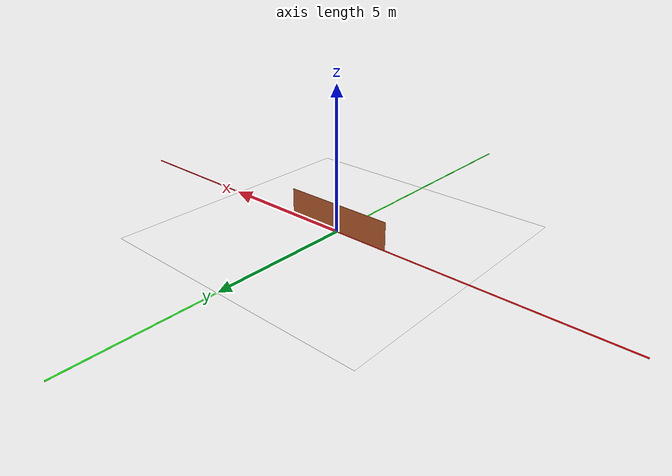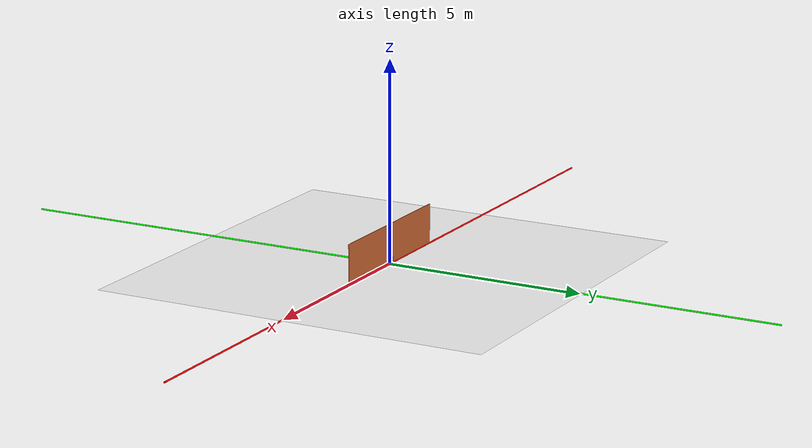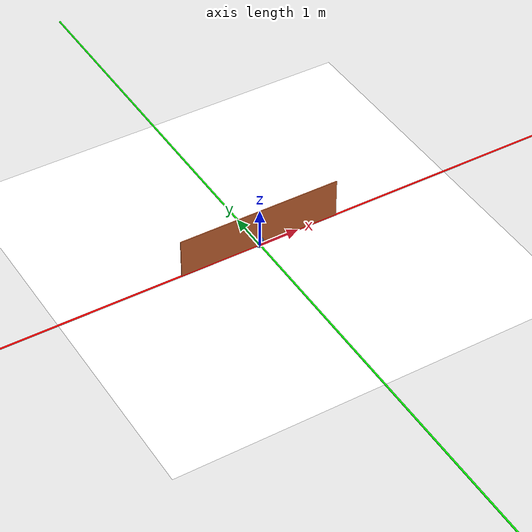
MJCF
<mujoco model="leg_in_stick_world">
  <compiler angle="radian" coordinate="local" inertiafromgeom="true"/>

  <!-- Use stick's physics settings -->
  <option timestep="0.002" integrator="RK4" gravity="0 0 -9.81"/>

  <!-- Use stick's contact settings -->
  <default>
    <geom contype="1" conaffinity="1" friction="3 3 3"
          solimp="0.995 0.995 0.001" solref="0.005 0.3"/>
    <!-- Keep leg joint defaults -->
    <joint type="hinge" pos="0 0 0" axis="0 1 0" limited="true" damping="1.0"/>
    <position ctrlrange="-3.14 3.14" kp="100"/>
  </default>

  <worldbody>
    <!-- STICK'S WORLD - copy exactly -->
    <geom name="ground" type="plane" size="5 5 0.1"
          rgba="1 1 1 1" material="checkerboard"/>

    <geom name="wall" type="box" size="2 0.01 0.5" pos="0 0 0.5" rgba="0.8 0.4 0.2 1"/>

    <geom name="x_axis" type="cylinder" size="0.02 10"
          pos="0 0 0.01" rgba="1 0 0 1" euler="0 1.5708 0"
          contype="0" conaffinity="0"/>

    <geom name="y_axis" type="cylinder" size="0.02 10"
          pos="0 0 0.01" rgba="0 1 0 1" euler="1.5708 0 0"
          contype="0" conaffinity="0"/>

    <!-- REPLACE STICK WITH LEG - but use freejoint like stick -->
    <body name="leg_body" pos="0 0 0" euler="0 0 0">  <!-- We'll set this rotation in Python -->
        <freejoint name="leg_joint"/>

        <!-- LEG STRUCTURE - foot now points in +X direction relative to leg_body -->
        <geom name="torso" type="capsule" fromto="0 0 -0.15 0 0 0.15" size="0.08" mass="15" friction="1 1 1" rgba="0.2 0.4 0.8 1"/>

        <body name="thigh" pos="0 0 -0.2">
            <joint name="hip" range="-1.2 2.0" stiffness="10" armature="0.01" damping="2.0"/>
            <geom name="thigh" type="capsule" fromto="0 0 0 0 0 -0.35" size="0.045" mass="4" friction="1 1 1" rgba="0.2 0.4 0.8 1"/>

            <body name="shin" pos="0 0 -0.35">
            <joint name="knee" range="-0.2 2.2" stiffness="8" armature="0.01" damping="1.8"/>
            <geom name="shin" type="capsule" fromto="0 0 0 0 0 -0.35" size="0.035" mass="2" friction="1 1 1" rgba="0.2 0.4 0.8 1"/>

            <body name="foot" pos="0 0 -0.35">
                <joint name="ankle" range="-1.0 1.0" stiffness="5" armature="0.01" damping="1.2"/>
                <!-- Foot now clearly points forward in +X direction -->
                <geom name="foot_main" type="box" size="0.12 0.05 0.035" pos="0.05 0 -0.035"
                    mass="1.0" rgba="0.2 0.4 0.8 1" friction="1.5 0.1 0.05"/>
                <geom name="foot_sole_back" type="box" size="0.04 0.05 0.005" pos="-0.03 0 -0.065"
                    mass="0.01" rgba="0.2 0.8 0.2 1" friction="2.0 0.1 0.05"/>
                <geom name="foot_sole_front" type="box" size="0.04 0.05 0.005" pos="0.13 0 -0.065"
                    mass="0.01" rgba="0.2 0.8 0.2 1" friction="2.0 0.1 0.05"/>
            </body>
            </body>
        </body>

        <inertial pos="0 0 -0.5" mass="22" diaginertia="2.0 2.0 0.1"/>
        </body>
    <!-- STICK'S LIGHTING -->
    <light directional="true" ambient="0.2 0.2 0.2" diffuse="0.8 0.8 0.8"
           specular="0.3 0.3 0.3" castshadow="false" pos="0 0 20" dir="0 0 -1"/>
  </worldbody>

  <!-- Keep leg actuators -->
  <actuator>
    <position name="hip_ctrl" joint="hip" kp="300" kv="30" ctrlrange="-1.2 2.0"/>
    <position name="knee_ctrl" joint="knee" kp="240" kv="24" ctrlrange="-0.2 2.2"/>
    <position name="ankle_ctrl" joint="ankle" kp="160" kv="16" ctrlrange="-1.0 1.0"/>
  </actuator>

  <!-- STICK'S ASSETS -->
  <asset>
    <texture name="checker_texture" type="2d" builtin="checker"
             rgb1="0.3 0.3 0.3" rgb2="0.5 0.5 0.5" width="512" height="512"/>
    <material name="checkerboard" texture="checker_texture"
              texrepeat="2 2" texuniform="true" reflectance="0.1"/>
  </asset>

  <visual>
      <global offwidth="1280" offheight="720"/>
  </visual>

  <statistic extent="10" center="0 0 1"/>
</mujoco>
